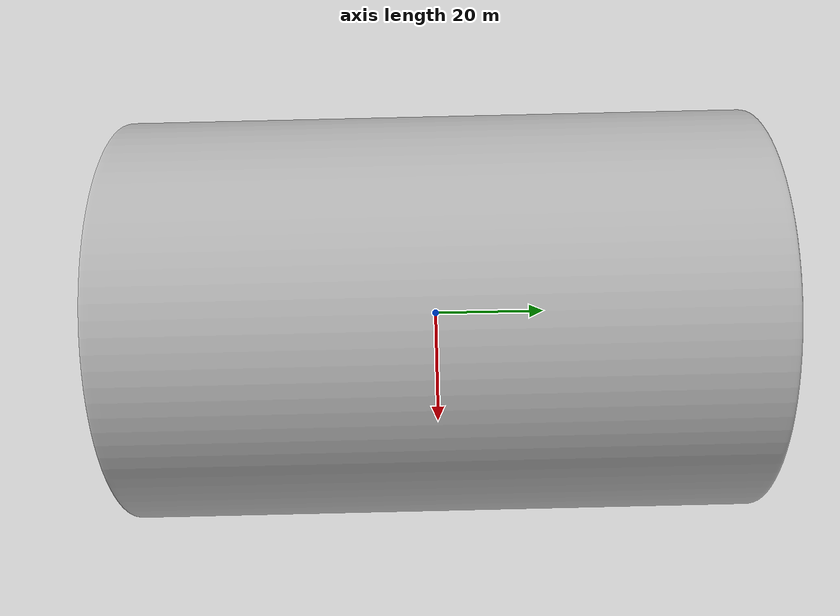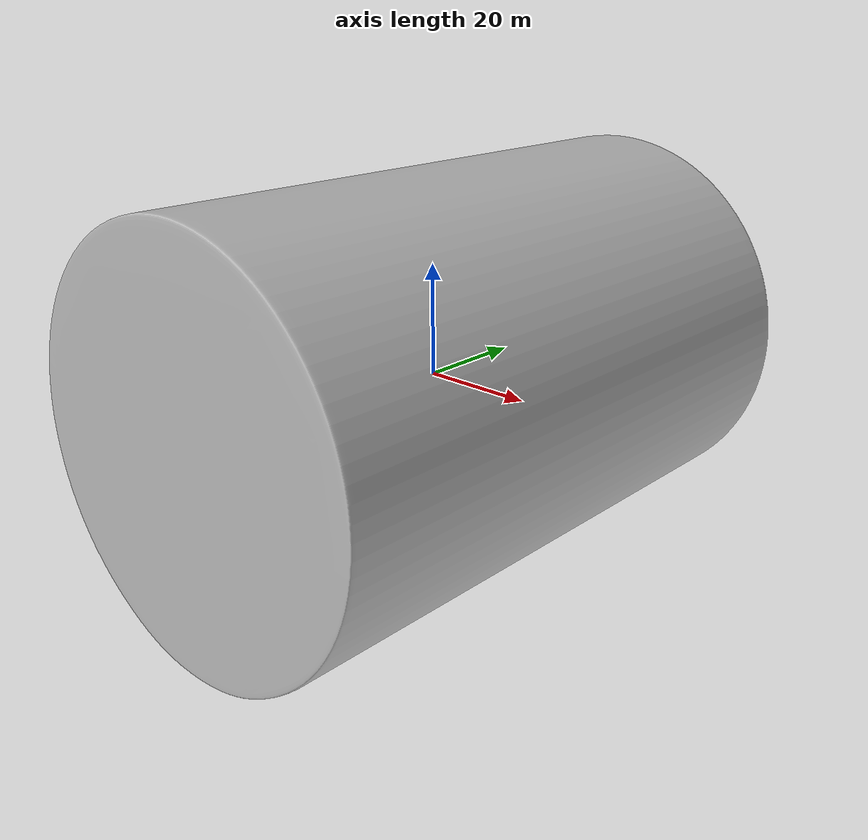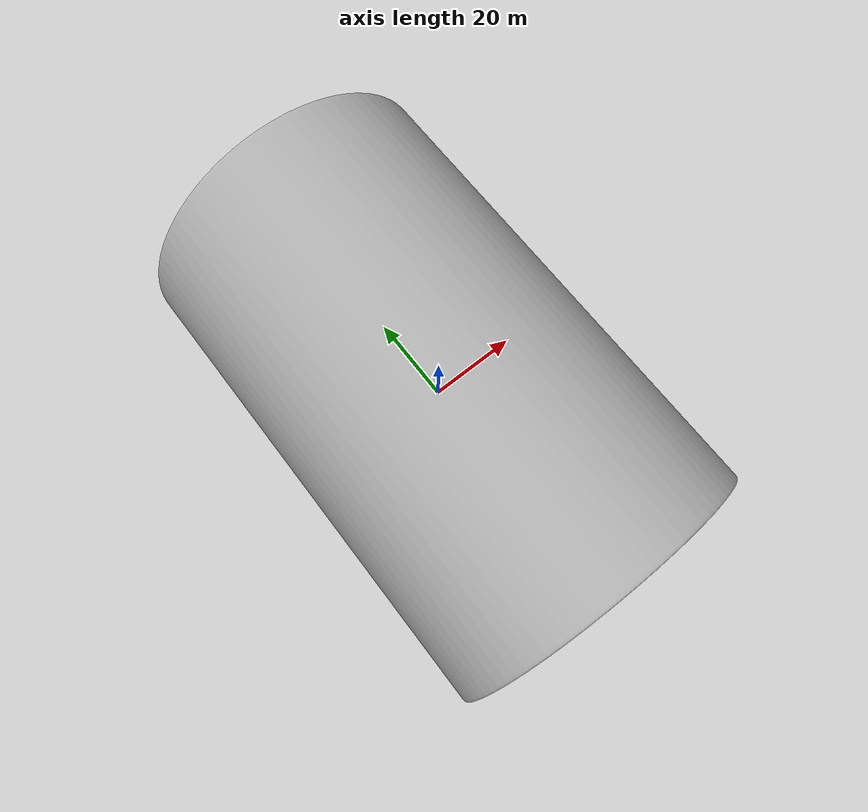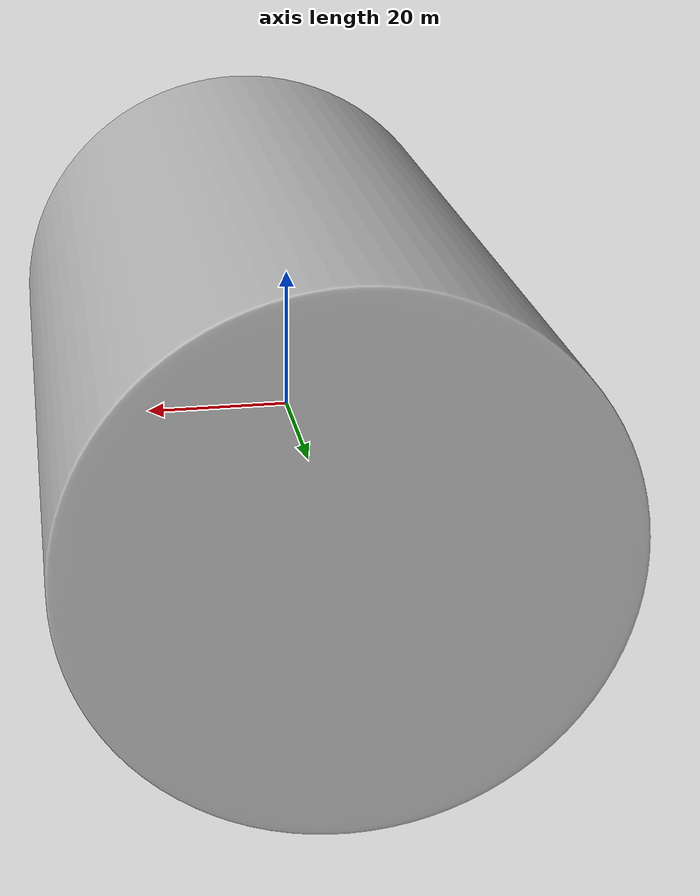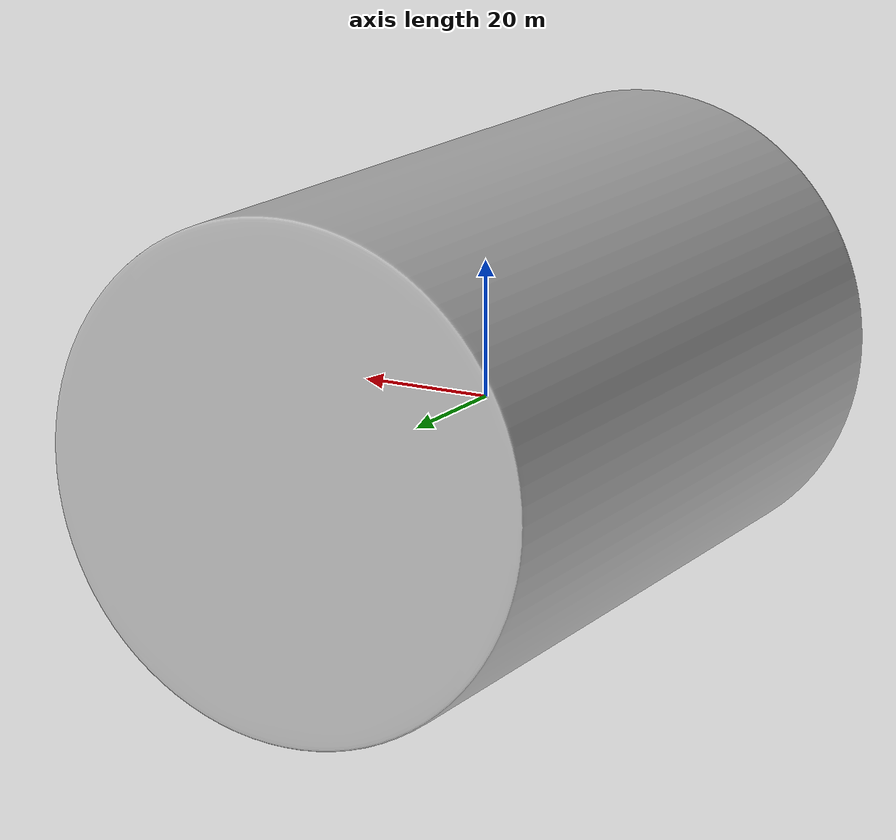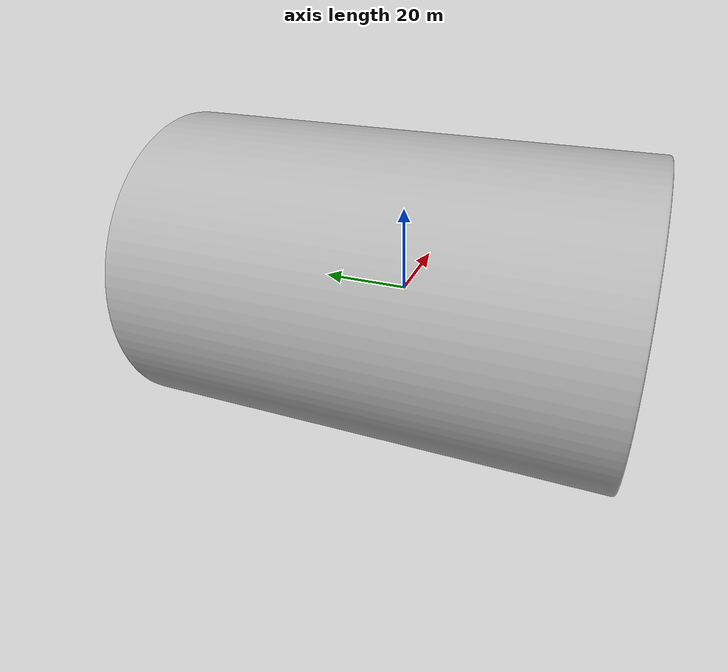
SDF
<?xml version="1.0"?>
<sdf version="1.6">
    <model name="can_bean">
      <static>true</static>
      <pose>0 0 0.0545 0 0 0</pose>
      <rpy>1.5807 0 0</rpy>
      <link name="bean_can1">
        <pose relative_to='__model__'>0.075 0.25 0 1.5708 0 0</pose>
        <collision name="collision">
        <pose>0 0 0 1.5708 0 0</pose>
          <geometry>
            <mesh>
              <uri>
                  /home/josch/ROS2/src/robot_creation/src/gazebo/Bean_Can_Aruco/Joshka_cannette1.obj
              </uri>
            </mesh>
          </geometry>
        </collision>
        <visual name="visual">
        <pose>0 0 0 1.5708 0 0</pose>
          <geometry>
            <mesh>
              <uri>
                  /home/josch/ROS2/src/robot_creation/src/gazebo/Bean_Can_Aruco/Joshka_cannette1.obj
              </uri>
            </mesh>
          </geometry>
        </visual>
      </link>
    </model>
</sdf>
